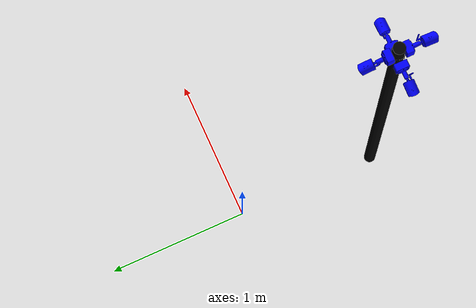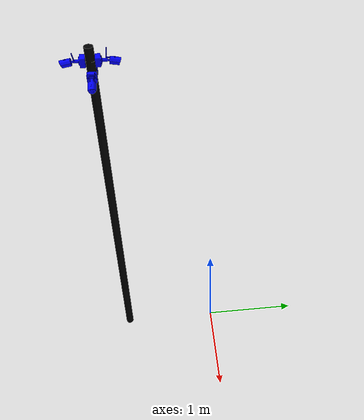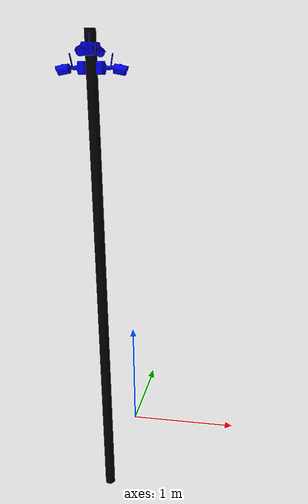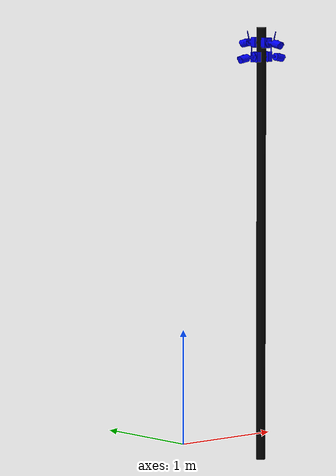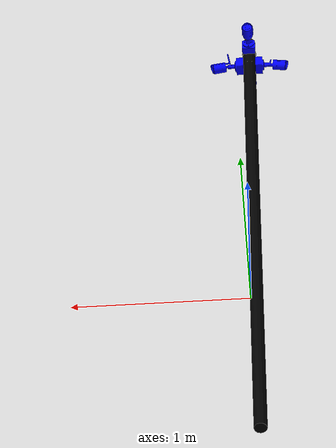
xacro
<?xml version="1.0" encoding="UTF-8"?>

<robot xmlns:xacro="http://www.ros.org/wiki/xacro" name="camera_stand">

    <link name="foundation" />

    <!-- Base Link -->
    <link name="cam_base_link">
        <visual>
            <origin xyz="0 0 0" rpy="0 0 0" />
            <geometry>
                <mesh filename="package://bumperbot_description/meshes/cam_base_link.STL" />
            </geometry>
            <material name="black"/>
        </visual>
        <collision>
            <origin xyz="0 0 0" rpy="0 0 0" />
            <geometry>
                <mesh filename="package://bumperbot_description/meshes/cam_base_link.STL" />
            </geometry>
        </collision>
        <inertial>
            <origin xyz="0 0 0" rpy="0.0 0.0 0.0" />
            <mass value="1" />
            <inertia ixx="1" ixy="0" ixz="0"
                iyy="1" iyz="0"
                izz="1" />
        </inertial>

    </link>

    <joint name="fixation" type="fixed">
        <parent link="foundation" />
        <child link="cam_base_link" />
        <origin xyz="0 -1 0" rpy="0 0 0" />
        <axis xyz="0 0 0" />
    </joint>

    <!-- Macro for Camera Links -->
    <xacro:macro name="camera_link" params="name xyz rpy filename">
        <link name="${name}">
            <visual>
                <origin xyz="${xyz}" rpy="${rpy}" />
                <geometry>
                    <mesh filename="${filename}" />
                </geometry>
                <material name="blue"/>
            </visual>
            <collision>
                <origin xyz="${xyz}" rpy="${rpy}" />
                <geometry>
                    <mesh filename="${filename}" />
                </geometry>
            </collision>

            <inertial>
                <origin xyz="0 0 0" rpy="0.0 0.0 0.0" />
                <mass value="1" />
                <inertia ixx="1" ixy="0" ixz="0"
                    iyy="1" iyz="0"
                    izz="1" />
            </inertial>

        </link>
    </xacro:macro>

    <!-- Macro for Camera Joints -->
    <xacro:macro name="camera_joint" params="name parent child xyz rpy">
        <joint name="${name}" type="fixed">
            <origin xyz="${xyz}" rpy="${rpy}" />
            <parent link="${parent}" />
            <child link="${child}" />
        </joint>
    </xacro:macro>

    <xacro:macro name="camera_optical_link_joint" params="name parent child">
        <joint name="${name}" type="fixed">
            <parent link="${parent}" />
            <child link="${child}" />
            <origin xyz="0 0 0" rpy="0 0 ${pi}" />
        </joint>
    </xacro:macro>

    <xacro:macro name="camera_optical_link" params="name">
        <link name="${name}"/>
    </xacro:macro>

    <xacro:macro name="camera_gazebo_ref" params="link_name camera_name">
        <gazebo reference="${link_name}">

            <sensor name="${camera_name}" type="camera">
                <gz_frame_id>${link_name}</gz_frame_id>
                <always_on>true</always_on>
                <visualize>true</visualize>
                <update_rate>10</update_rate>
                <pose>0 0 0 0 0 0</pose>
                <camera>
                    <camera_info_topic>${camera_name}/camera_info</camera_info_topic>
                    <!-- In radians, so approximately 90 degrees-->
                    <horizontal_fov>1.571</horizontal_fov>
                    <image>
                        <width>640</width>
                        <height>480</height>
                        <format>R8G8B8</format>
                    </image>
                    <clip>
                        <near>0.05</near>
                        <far>100.0</far>
                    </clip>
                </camera>
                <topic>${camera_name}/image_raw</topic>
            </sensor>
        </gazebo>

    </xacro:macro>

    <!-- Define Ball -->

    <!-- Define Cameras -->
    <xacro:camera_link
        name="camera_link_north"
        xyz="0 0 0"
        rpy="0 0 0"
        filename="package://bumperbot_description/meshes/camera_link_north.STL"
    />
    <xacro:camera_joint
        name="cam_joint_north"
        parent="cam_base_link"
        child="camera_link_north"
        xyz="-0.23575 0 3.391"
        rpy="0.15764 -0.17851 -0.028217" />
    <xacro:camera_optical_link
        name="camera_optical_link_north"/>
    <xacro:camera_optical_link_joint
        name="camera_optical_link_joint_north"
        parent="camera_link_north"
        child="camera_optical_link_north"/>
    <xacro:camera_gazebo_ref link_name="camera_optical_link_north" camera_name="camera_north" />

    <xacro:camera_link
        name="camera_link_east"
        xyz="0 0 0"
        rpy="0 0 0"
        filename="package://bumperbot_description/meshes/camera_link_east.STL"
    />
    <xacro:camera_joint
        name="cam_joint_east"
        parent="cam_base_link"
        child="camera_link_east"
        xyz="0 -0.23575 3.511"
        rpy="-0.15257 0.18285 -1.5708" />

    <xacro:camera_gazebo_ref link_name="camera_link_east" camera_name="camera_east" />

    <xacro:camera_link
        name="camera_link_south"
        xyz="0 0 0"
        rpy="0 0 0"
        filename="package://bumperbot_description/meshes/camera_link_south.STL"
    />
    <xacro:camera_joint
        name="cam_joint_south"
        parent="cam_base_link"
        child="camera_link_south"
        xyz="0.23575 0 3.391"
        rpy="0.15257 -0.18285 3.1416" />
         <xacro:camera_optical_link
        name="camera_optical_link_south"/>
    <xacro:camera_optical_link_joint
        name="camera_optical_link_joint_south"
        parent="camera_link_south"
        child="camera_optical_link_south"/>
    <xacro:camera_gazebo_ref link_name="camera_optical_link_south" camera_name="camera_south" />

    <xacro:camera_link
        name="camera_link_west"
        xyz="0 0 0"
        rpy="0 0 0"
        filename="package://bumperbot_description/meshes/camera_link_west.STL"
    />
    <xacro:camera_joint
        name="cam_joint_west"
        parent="cam_base_link"
        child="camera_link_west"
        xyz="0 0.23575 3.511"
        rpy="-0.15257 0.18285 1.5708" />
    <xacro:camera_gazebo_ref link_name="camera_link_west" camera_name="camera_west" />

    <material name="blue">
        <color rgba="0 0 1 1" />
    </material>
    <material name="black">
        <color rgba="0 0 0 1" />
    </material>
    <material name="silver">
        <color rgba="0.79 0.82 0.93 1" />
    </material>
    <material name="dark_grey">
        <color rgba="0.3 0.3 0.3 1" />
    </material>

</robot>
